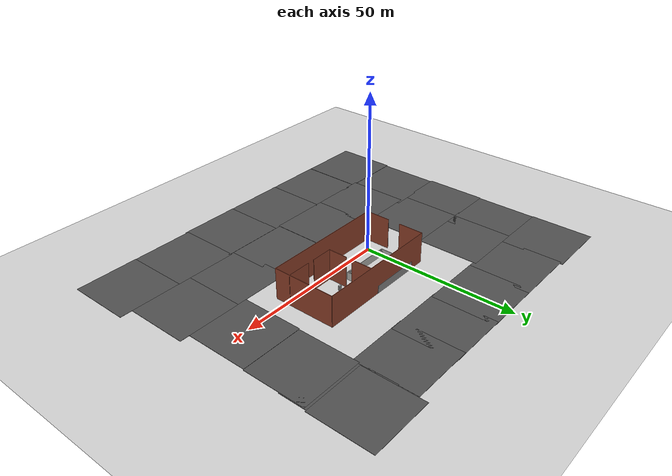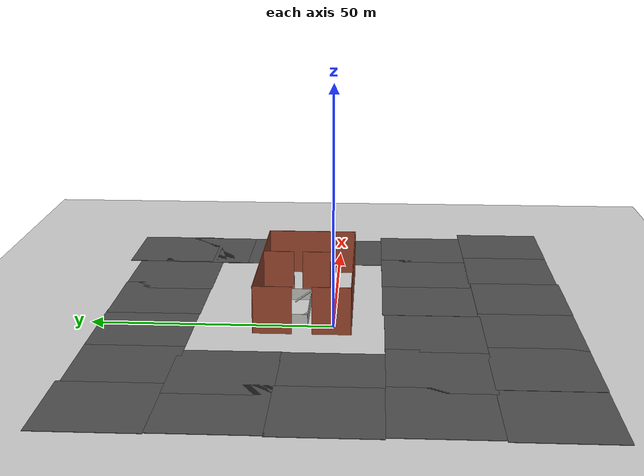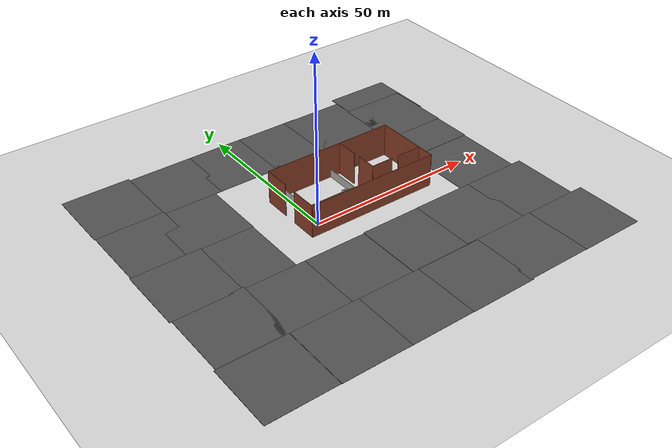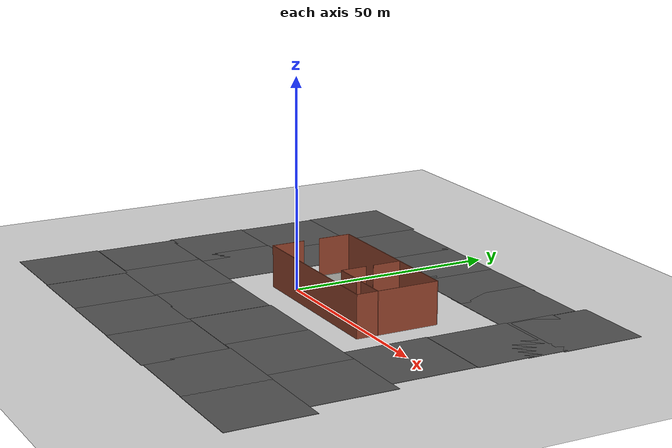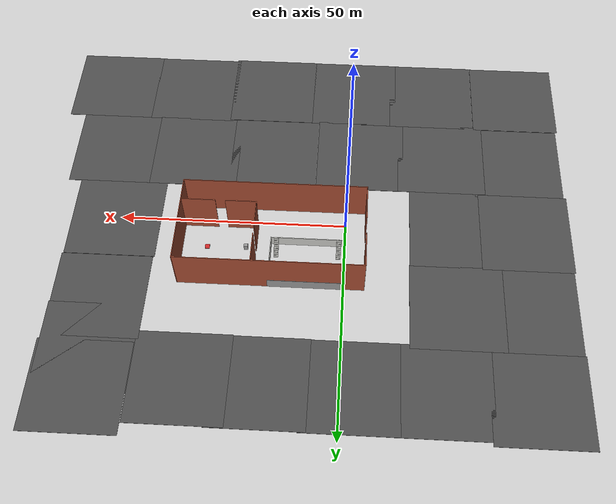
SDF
<sdf version="1.7">
 <world name="default">
  <light name="sun" type="directional">
   <pose>0 0 10 0 -0 0</pose>
   <diffuse>0.8 0.8 0.8 1</diffuse>
   <specular>0.2 0.2 0.2 1</specular>
   <attenuation>
    <range>1000</range>
    <constant>0.9</constant>
    <linear>0.01</linear>
    <quadratic>0.001</quadratic>
   </attenuation>
   <direction>-0.5 0.1 -0.9</direction>
   <spot><inner_angle>0</inner_angle><outer_angle>0</outer_angle><falloff>0</falloff></spot>
  </light>
  <model name="ground_plane">
   <static>1</static>
   <link name="link">
    <collision name="collision">
     <geometry><plane><normal>0 0 1</normal><size>100 100</size></plane></geometry>
     <surface><friction><ode><mu>100</mu><mu2>50</mu2></ode></friction></surface>
    </collision>
    <visual name="visual">
     <cast_shadows>0</cast_shadows>
     <geometry><plane><normal>0 0 1</normal><size>100 100</size></plane></geometry>
     <material>
      <script><uri>file://media/materials/scripts/gazebo.material</uri><name>Gazebo/Grey</name></script>
     </material>
    </visual>
   </link>
  </model>
  <gravity>0 0 -9.8</gravity>
  <magnetic_field>6e-06 2.3e-05 -4.2e-05</magnetic_field>
  <atmosphere type="adiabatic"/>
  <physics type="ode">
   <max_step_size>0.001</max_step_size>
   <real_time_factor>1</real_time_factor>
   <real_time_update_rate>1000</real_time_update_rate>
  </physics>
  <scene><ambient>0.4 0.4 0.4 1</ambient><background>0.7 0.7 0.7 1</background><shadows>1</shadows></scene>
  <spherical_coordinates>
   <surface_model>EARTH_WGS84</surface_model>
   <latitude_deg>0</latitude_deg>
   <longitude_deg>0</longitude_deg>
   <elevation>0</elevation>
   <heading_deg>0</heading_deg>
  </spherical_coordinates>
  <model name="asphalt_plane">
   <static>1</static>
   <link name="link">
    <collision name="collision"><geometry><box><size>20 20 0.1</size></box></geometry></collision>
    <visual name="visual">
     <cast_shadows>0</cast_shadows>
     <geometry><box><size>20 20 0.1</size></box></geometry>
     <material>
      <script>
       <uri>model://asphalt_plane/materials/scripts</uri>
       <uri>model://asphalt_plane/materials/textures</uri>
       <name>vrc/asphalt</name>
      </script>
     </material>
    </visual>
   </link>
   <pose>-39.8241 -39.947 0 0 -0 0</pose>
  </model>
  <model name="asphalt_plane_0">
   <static>1</static>
   <link name="link">
    <collision name="collision"><geometry><box><size>20 20 0.1</size></box></geometry></collision>
    <visual name="visual">
     <cast_shadows>0</cast_shadows>
     <geometry><box><size>20 20 0.1</size></box></geometry>
     <material>
      <script>
       <uri>model://asphalt_plane/materials/scripts</uri>
       <uri>model://asphalt_plane/materials/textures</uri>
       <name>vrc/asphalt</name>
      </script>
     </material>
    </visual>
   </link>
   <pose>-19.7251 -40.0496 0 0 -0 0</pose>
  </model>
  <model name="asphalt_plane_0_clone">
   <static>1</static>
   <link name="link">
    <collision name="collision"><geometry><box><size>20 20 0.1</size></box></geometry></collision>
    <visual name="visual">
     <cast_shadows>0</cast_shadows>
     <geometry><box><size>20 20 0.1</size></box></geometry>
     <material>
      <script>
       <uri>model://asphalt_plane/materials/scripts</uri>
       <uri>model://asphalt_plane/materials/textures</uri>
       <name>vrc/asphalt</name>
      </script>
     </material>
    </visual>
   </link>
   <pose>-1.04317 -40.092 0 0 -0 0</pose>
  </model>
  <model name="asphalt_plane_0_clone_0">
   <static>1</static>
   <link name="link">
    <collision name="collision"><geometry><box><size>20 20 0.1</size></box></geometry></collision>
    <visual name="visual">
     <cast_shadows>0</cast_shadows>
     <geometry><box><size>20 20 0.1</size></box></geometry>
     <material>
      <script>
       <uri>model://asphalt_plane/materials/scripts</uri>
       <uri>model://asphalt_plane/materials/textures</uri>
       <name>vrc/asphalt</name>
      </script>
     </material>
    </visual>
   </link>
   <pose>18.8278 -40.1651 0 0 -0 0</pose>
  </model>
  <model name="asphalt_plane_0_clone_1">
   <static>1</static>
   <link name="link">
    <collision name="collision"><geometry><box><size>20 20 0.1</size></box></geometry></collision>
    <visual name="visual">
     <cast_shadows>0</cast_shadows>
     <geometry><box><size>20 20 0.1</size></box></geometry>
     <material>
      <script>
       <uri>model://asphalt_plane/materials/scripts</uri>
       <uri>model://asphalt_plane/materials/textures</uri>
       <name>vrc/asphalt</name>
      </script>
     </material>
    </visual>
   </link>
   <pose>38.1259 -39.7973 0 0 -0 0</pose>
  </model>
  <model name="asphalt_plane_0_clone_2">
   <static>1</static>
   <link name="link">
    <collision name="collision"><geometry><box><size>20 20 0.1</size></box></geometry></collision>
    <visual name="visual">
     <cast_shadows>0</cast_shadows>
     <geometry><box><size>20 20 0.1</size></box></geometry>
     <material>
      <script>
       <uri>model://asphalt_plane/materials/scripts</uri>
       <uri>model://asphalt_plane/materials/textures</uri>
       <name>vrc/asphalt</name>
      </script>
     </material>
    </visual>
   </link>
   <pose>57.929 -39.8816 0 0 -0 0</pose>
  </model>
  <model name="asphalt_plane_0_clone_0_clone">
   <static>1</static>
   <link name="link">
    <collision name="collision"><geometry><box><size>20 20 0.1</size></box></geometry></collision>
    <visual name="visual">
     <cast_shadows>0</cast_shadows>
     <geometry><box><size>20 20 0.1</size></box></geometry>
     <material>
      <script>
       <uri>model://asphalt_plane/materials/scripts</uri>
       <uri>model://asphalt_plane/materials/textures</uri>
       <name>vrc/asphalt</name>
      </script>
     </material>
    </visual>
   </link>
   <pose>-39.3448 -19.834 0 0 -0 0</pose>
  </model>
  <model name="asphalt_plane_0_clone_0_clone_0">
   <static>1</static>
   <link name="link">
    <collision name="collision"><geometry><box><size>20 20 0.1</size></box></geometry></collision>
    <visual name="visual">
     <cast_shadows>0</cast_shadows>
     <geometry><box><size>20 20 0.1</size></box></geometry>
     <material>
      <script>
       <uri>model://asphalt_plane/materials/scripts</uri>
       <uri>model://asphalt_plane/materials/textures</uri>
       <name>vrc/asphalt</name>
      </script>
     </material>
    </visual>
   </link>
   <pose>-21.6374 -20.4901 0 0 -0 0</pose>
  </model>
  <model name="asphalt_plane_0_clone_0_clone_0_clone">
   <static>1</static>
   <link name="link">
    <collision name="collision"><geometry><box><size>20 20 0.1</size></box></geometry></collision>
    <visual name="visual">
     <cast_shadows>0</cast_shadows>
     <geometry><box><size>20 20 0.1</size></box></geometry>
     <material>
      <script>
       <uri>model://asphalt_plane/materials/scripts</uri>
       <uri>model://asphalt_plane/materials/textures</uri>
       <name>vrc/asphalt</name>
      </script>
     </material>
    </visual>
   </link>
   <pose>-2.86233 -20.4676 0 0 -0 0</pose>
  </model>
  <model name="asphalt_plane_0_clone_0_clone_0_clone_0">
   <static>1</static>
   <link name="link">
    <collision name="collision"><geometry><box><size>20 20 0.1</size></box></geometry></collision>
    <visual name="visual">
     <cast_shadows>0</cast_shadows>
     <geometry><box><size>20 20 0.1</size></box></geometry>
     <material>
      <script>
       <uri>model://asphalt_plane/materials/scripts</uri>
       <uri>model://asphalt_plane/materials/textures</uri>
       <name>vrc/asphalt</name>
      </script>
     </material>
    </visual>
   </link>
   <pose>17.2093 -20.1016 0 0 -0 0</pose>
  </model>
  <model name="asphalt_plane_0_clone_0_clone_0_clone_1">
   <static>1</static>
   <link name="link">
    <collision name="collision"><geometry><box><size>20 20 0.1</size></box></geometry></collision>
    <visual name="visual">
     <cast_shadows>0</cast_shadows>
     <geometry><box><size>20 20 0.1</size></box></geometry>
     <material>
      <script>
       <uri>model://asphalt_plane/materials/scripts</uri>
       <uri>model://asphalt_plane/materials/textures</uri>
       <name>vrc/asphalt</name>
      </script>
     </material>
    </visual>
   </link>
   <pose>35.52 -20.0038 0 0 -0 0</pose>
  </model>
  <model name="asphalt_plane_0_clone_0_clone_0_clone_2">
   <static>1</static>
   <link name="link">
    <collision name="collision"><geometry><box><size>20 20 0.1</size></box></geometry></collision>
    <visual name="visual">
     <cast_shadows>0</cast_shadows>
     <geometry><box><size>20 20 0.1</size></box></geometry>
     <material>
      <script>
       <uri>model://asphalt_plane/materials/scripts</uri>
       <uri>model://asphalt_plane/materials/textures</uri>
       <name>vrc/asphalt</name>
      </script>
     </material>
    </visual>
   </link>
   <pose>-39.8943 -0.386975 0 0 -0 0</pose>
  </model>
  <model name="asphalt_plane_0_clone_0_clone_0_clone_3">
   <static>1</static>
   <link name="link">
    <collision name="collision"><geometry><box><size>20 20 0.1</size></box></geometry></collision>
    <visual name="visual">
     <cast_shadows>0</cast_shadows>
     <geometry><box><size>20 20 0.1</size></box></geometry>
     <material>
      <script>
       <uri>model://asphalt_plane/materials/scripts</uri>
       <uri>model://asphalt_plane/materials/textures</uri>
       <name>vrc/asphalt</name>
      </script>
     </material>
    </visual>
   </link>
   <pose>-24.2725 -0.516395 0 0 -0 0</pose>
  </model>
  <model name="asphalt_plane_0_clone_0_clone_0_clone_7">
   <static>1</static>
   <link name="link">
    <collision name="collision"><geometry><box><size>20 20 0.1</size></box></geometry></collision>
    <visual name="visual">
     <cast_shadows>0</cast_shadows>
     <geometry><box><size>20 20 0.1</size></box></geometry>
     <material>
      <script>
       <uri>model://asphalt_plane/materials/scripts</uri>
       <uri>model://asphalt_plane/materials/textures</uri>
       <name>vrc/asphalt</name>
      </script>
     </material>
    </visual>
   </link>
   <pose>51.209 -0.020761 0 0 -0 0</pose>
  </model>
  <model name="asphalt_plane_0_clone_0_clone_0_clone_8">
   <static>1</static>
   <link name="link">
    <collision name="collision"><geometry><box><size>20 20 0.1</size></box></geometry></collision>
    <visual name="visual">
     <cast_shadows>0</cast_shadows>
     <geometry><box><size>20 20 0.1</size></box></geometry>
     <material>
      <script>
       <uri>model://asphalt_plane/materials/scripts</uri>
       <uri>model://asphalt_plane/materials/textures</uri>
       <name>vrc/asphalt</name>
      </script>
     </material>
    </visual>
   </link>
   <pose>54.1683 -19.9427 0 0 -0 0</pose>
  </model>
  <model name="asphalt_plane_0_clone_0_clone_0_clone_9">
   <static>1</static>
   <link name="link">
    <collision name="collision"><geometry><box><size>20 20 0.1</size></box></geometry></collision>
    <visual name="visual">
     <cast_shadows>0</cast_shadows>
     <geometry><box><size>20 20 0.1</size></box></geometry>
     <material>
      <script>
       <uri>model://asphalt_plane/materials/scripts</uri>
       <uri>model://asphalt_plane/materials/textures</uri>
       <name>vrc/asphalt</name>
      </script>
     </material>
    </visual>
   </link>
   <pose>52.1501 40.8071 0 0 -0 0</pose>
  </model>
  <model name="asphalt_plane_0_clone_0_clone_0_clone_10">
   <static>1</static>
   <link name="link">
    <collision name="collision"><geometry><box><size>20 20 0.1</size></box></geometry></collision>
    <visual name="visual">
     <cast_shadows>0</cast_shadows>
     <geometry><box><size>20 20 0.1</size></box></geometry>
     <material>
      <script>
       <uri>model://asphalt_plane/materials/scripts</uri>
       <uri>model://asphalt_plane/materials/textures</uri>
       <name>vrc/asphalt</name>
      </script>
     </material>
    </visual>
   </link>
   <pose>51.4991 20.0467 0 0 -0 0</pose>
  </model>
  <model name="asphalt_plane_0_clone_0_clone_0_clone_11">
   <static>1</static>
   <link name="link">
    <collision name="collision"><geometry><box><size>20 20 0.1</size></box></geometry></collision>
    <visual name="visual">
     <cast_shadows>0</cast_shadows>
     <geometry><box><size>20 20 0.1</size></box></geometry>
     <material>
      <script>
       <uri>model://asphalt_plane/materials/scripts</uri>
       <uri>model://asphalt_plane/materials/textures</uri>
       <name>vrc/asphalt</name>
      </script>
     </material>
    </visual>
   </link>
   <pose>51.7309 32.1414 0 0 -0 0</pose>
  </model>
  <model name="asphalt_plane_0_clone_0_clone_0_clone_13">
   <static>1</static>
   <link name="link">
    <collision name="collision"><geometry><box><size>20 20 0.1</size></box></geometry></collision>
    <visual name="visual">
     <cast_shadows>0</cast_shadows>
     <geometry><box><size>20 20 0.1</size></box></geometry>
     <material>
      <script>
       <uri>model://asphalt_plane/materials/scripts</uri>
       <uri>model://asphalt_plane/materials/textures</uri>
       <name>vrc/asphalt</name>
      </script>
     </material>
    </visual>
   </link>
   <pose>31.9998 38.1355 0 0 -0 0</pose>
  </model>
  <model name="asphalt_plane_0_clone_0_clone_0_clone_14">
   <static>1</static>
   <link name="link">
    <collision name="collision"><geometry><box><size>20 20 0.1</size></box></geometry></collision>
    <visual name="visual">
     <cast_shadows>0</cast_shadows>
     <geometry><box><size>20 20 0.1</size></box></geometry>
     <material>
      <script>
       <uri>model://asphalt_plane/materials/scripts</uri>
       <uri>model://asphalt_plane/materials/textures</uri>
       <name>vrc/asphalt</name>
      </script>
     </material>
    </visual>
   </link>
   <pose>-39.5883 19.3306 0 0 -0 0</pose>
  </model>
  <model name="asphalt_plane_0_clone_0_clone_0_clone_15">
   <static>1</static>
   <link name="link">
    <collision name="collision"><geometry><box><size>20 20 0.1</size></box></geometry></collision>
    <visual name="visual">
     <cast_shadows>0</cast_shadows>
     <geometry><box><size>20 20 0.1</size></box></geometry>
     <material>
      <script>
       <uri>model://asphalt_plane/materials/scripts</uri>
       <uri>model://asphalt_plane/materials/textures</uri>
       <name>vrc/asphalt</name>
      </script>
     </material>
    </visual>
   </link>
   <pose>-24.0924 19.3286 0 0 -0 0</pose>
  </model>
  <model name="asphalt_plane_0_clone_0_clone_0_clone_18">
   <static>1</static>
   <link name="link">
    <collision name="collision"><geometry><box><size>20 20 0.1</size></box></geometry></collision>
    <visual name="visual">
     <cast_shadows>0</cast_shadows>
     <geometry><box><size>20 20 0.1</size></box></geometry>
     <material>
      <script>
       <uri>model://asphalt_plane/materials/scripts</uri>
       <uri>model://asphalt_plane/materials/textures</uri>
       <name>vrc/asphalt</name>
      </script>
     </material>
    </visual>
   </link>
   <pose>-39.8337 39.2617 0 0 -0 0</pose>
  </model>
  <model name="asphalt_plane_0_clone_0_clone_0_clone_19">
   <static>1</static>
   <link name="link">
    <collision name="collision"><geometry><box><size>20 20 0.1</size></box></geometry></collision>
    <visual name="visual">
     <cast_shadows>0</cast_shadows>
     <geometry><box><size>20 20 0.1</size></box></geometry>
     <material>
      <script>
       <uri>model://asphalt_plane/materials/scripts</uri>
       <uri>model://asphalt_plane/materials/textures</uri>
       <name>vrc/asphalt</name>
      </script>
     </material>
    </visual>
   </link>
   <pose>-20.6763 38.422 0 0 -0 0</pose>
  </model>
  <model name="asphalt_plane_0_clone_0_clone_0_clone_20">
   <static>1</static>
   <link name="link">
    <collision name="collision"><geometry><box><size>20 20 0.1</size></box></geometry></collision>
    <visual name="visual">
     <cast_shadows>0</cast_shadows>
     <geometry><box><size>20 20 0.1</size></box></geometry>
     <material>
      <script>
       <uri>model://asphalt_plane/materials/scripts</uri>
       <uri>model://asphalt_plane/materials/textures</uri>
       <name>vrc/asphalt</name>
      </script>
     </material>
    </visual>
   </link>
   <pose>-2.21286 38.4035 0 0 -0 0</pose>
  </model>
  <model name="asphalt_plane_0_clone_0_clone_0_clone_21">
   <static>1</static>
   <link name="link">
    <collision name="collision"><geometry><box><size>20 20 0.1</size></box></geometry></collision>
    <visual name="visual">
     <cast_shadows>0</cast_shadows>
     <geometry><box><size>20 20 0.1</size></box></geometry>
     <material>
      <script>
       <uri>model://asphalt_plane/materials/scripts</uri>
       <uri>model://asphalt_plane/materials/textures</uri>
       <name>vrc/asphalt</name>
      </script>
     </material>
    </visual>
   </link>
   <pose>16.0484 38.2798 0 0 -0 0</pose>
  </model>
  <model name="nuk_plant">
   <pose>15.4845 6.18745 0 0 -0 0</pose>
   <link name="Stairs_0">
    <visual name="Stairs_0_Visual_0">
     <pose>-14.1825 2.41899 0.083333 0 -0 0</pose>
     <geometry><box><size>1 0.233333 0.166667</size></box></geometry>
     <material>
      <script><uri>file://media/materials/scripts/gazebo.material</uri><name>Gazebo/CeilingTiled</name></script>
      <ambient>0.921569 0.807843 0.615686 1</ambient>
     </material>
     <meta><layer>0</layer></meta>
    </visual>
    <collision name="Stairs_0_Collision_0">
     <geometry><box><size>1 0.233333 0.166667</size></box></geometry>
     <pose>-14.1825 2.41899 0.083333 0 -0 0</pose>
    </collision>
    <visual name="Stairs_0_Visual_1">
     <pose>-14.1825 2.18565 0.25 0 -0 0</pose>
     <geometry><box><size>1 0.233333 0.166667</size></box></geometry>
     <material>
      <script><uri>file://media/materials/scripts/gazebo.material</uri><name>Gazebo/CeilingTiled</name></script>
      <ambient>0.921569 0.807843 0.615686 1</ambient>
     </material>
     <meta><layer>0</layer></meta>
    </visual>
    <collision name="Stairs_0_Collision_1">
     <geometry><box><size>1 0.233333 0.166667</size></box></geometry>
     <pose>-14.1825 2.18565 0.25 0 -0 0</pose>
    </collision>
    <visual name="Stairs_0_Visual_2">
     <pose>-14.1825 1.95232 0.416667 0 -0 0</pose>
     <geometry><box><size>1 0.233333 0.166667</size></box></geometry>
     <material>
      <script><uri>file://media/materials/scripts/gazebo.material</uri><name>Gazebo/CeilingTiled</name></script>
      <ambient>0.921569 0.807843 0.615686 1</ambient>
     </material>
     <meta><layer>0</layer></meta>
    </visual>
    <collision name="Stairs_0_Collision_2">
     <geometry><box><size>1 0.233333 0.166667</size></box></geometry>
     <pose>-14.1825 1.95232 0.416667 0 -0 0</pose>
    </collision>
    <visual name="Stairs_0_Visual_3">
     <pose>-14.1825 1.71899 0.583333 0 -0 0</pose>
     <geometry><box><size>1 0.233333 0.166667</size></box></geometry>
     <material>
      <script><uri>file://media/materials/scripts/gazebo.material</uri><name>Gazebo/CeilingTiled</name></script>
      <ambient>0.921569 0.807843 0.615686 1</ambient>
     </material>
     <meta><layer>0</layer></meta>
    </visual>
    <collision name="Stairs_0_Collision_3">
     <geometry><box><size>1 0.233333 0.166667</size></box></geometry>
     <pose>-14.1825 1.71899 0.583333 0 -0 0</pose>
    </collision>
    <visual name="Stairs_0_Visual_4">
     <pose>-14.1825 1.48565 0.75 0 -0 0</pose>
     <geometry><box><size>1 0.233333 0.166667</size></box></geometry>
     <material>
      <script><uri>file://media/materials/scripts/gazebo.material</uri><name>Gazebo/CeilingTiled</name></script>
      <ambient>0.921569 0.807843 0.615686 1</ambient>
     </material>
     <meta><layer>0</layer></meta>
    </visual>
    <collision name="Stairs_0_Collision_4">
     <geometry><box><size>1 0.233333 0.166667</size></box></geometry>
     <pose>-14.1825 1.48565 0.75 0 -0 0</pose>
    </collision>
    <visual name="Stairs_0_Visual_5">
     <pose>-14.1825 1.25232 0.916667 0 -0 0</pose>
     <geometry><box><size>1 0.233333 0.166667</size></box></geometry>
     <material>
      <script><uri>file://media/materials/scripts/gazebo.material</uri><name>Gazebo/CeilingTiled</name></script>
      <ambient>0.921569 0.807843 0.615686 1</ambient>
     </material>
     <meta><layer>0</layer></meta>
    </visual>
    <collision name="Stairs_0_Collision_5">
     <geometry><box><size>1 0.233333 0.166667</size></box></geometry>
     <pose>-14.1825 1.25232 0.916667 0 -0 0</pose>
    </collision>
    <visual name="Stairs_0_Visual_6">
     <pose>-14.1825 1.01899 1.08333 0 -0 0</pose>
     <geometry><box><size>1 0.233333 0.166667</size></box></geometry>
     <material>
      <script><uri>file://media/materials/scripts/gazebo.material</uri><name>Gazebo/CeilingTiled</name></script>
      <ambient>0.921569 0.807843 0.615686 1</ambient>
     </material>
     <meta><layer>0</layer></meta>
    </visual>
    <collision name="Stairs_0_Collision_6">
     <geometry><box><size>1 0.233333 0.166667</size></box></geometry>
     <pose>-14.1825 1.01899 1.08333 0 -0 0</pose>
    </collision>
    <visual name="Stairs_0_Visual_7">
     <pose>-14.1825 0.785654 1.25 0 -0 0</pose>
     <geometry><box><size>1 0.233333 0.166667</size></box></geometry>
     <material>
      <script><uri>file://media/materials/scripts/gazebo.material</uri><name>Gazebo/CeilingTiled</name></script>
      <ambient>0.921569 0.807843 0.615686 1</ambient>
     </material>
     <meta><layer>0</layer></meta>
    </visual>
    <collision name="Stairs_0_Collision_7">
     <geometry><box><size>1 0.233333 0.166667</size></box></geometry>
     <pose>-14.1825 0.785654 1.25 0 -0 0</pose>
    </collision>
    <visual name="Stairs_0_Visual_8">
     <pose>-14.1825 0.552321 1.41667 0 -0 0</pose>
     <geometry><box><size>1 0.233333 0.166667</size></box></geometry>
     <material>
      <script><uri>file://media/materials/scripts/gazebo.material</uri><name>Gazebo/CeilingTiled</name></script>
      <ambient>0.921569 0.807843 0.615686 1</ambient>
     </material>
     <meta><layer>0</layer></meta>
    </visual>
    <collision name="Stairs_0_Collision_8">
     <geometry><box><size>1 0.233333 0.166667</size></box></geometry>
     <pose>-14.1825 0.552321 1.41667 0 -0 0</pose>
    </collision>
    <visual name="Stairs_0_Visual_9">
     <pose>-14.1825 0.318988 1.58333 0 -0 0</pose>
     <geometry><box><size>1 0.233333 0.166667</size></box></geometry>
     <material>
      <script><uri>file://media/materials/scripts/gazebo.material</uri><name>Gazebo/CeilingTiled</name></script>
      <ambient>0.921569 0.807843 0.615686 1</ambient>
     </material>
     <meta><layer>0</layer></meta>
    </visual>
    <collision name="Stairs_0_Collision_9">
     <geometry><box><size>1 0.233333 0.166667</size></box></geometry>
     <pose>-14.1825 0.318988 1.58333 0 -0 0</pose>
    </collision>
    <visual name="Stairs_0_Visual_10">
     <pose>-14.1825 0.085654 1.75 0 -0 0</pose>
     <geometry><box><size>1 0.233333 0.166667</size></box></geometry>
     <material>
      <script><uri>file://media/materials/scripts/gazebo.material</uri><name>Gazebo/CeilingTiled</name></script>
      <ambient>0.921569 0.807843 0.615686 1</ambient>
     </material>
     <meta><layer>0</layer></meta>
    </visual>
    <collision name="Stairs_0_Collision_10">
     <geometry><box><size>1 0.233333 0.166667</size></box></geometry>
     <pose>-14.1825 0.085654 1.75 0 -0 0</pose>
    </collision>
    <visual name="Stairs_0_Visual_11">
     <pose>-14.1825 -0.147679 1.91667 0 -0 0</pose>
     <geometry><box><size>1 0.233333 0.166667</size></box></geometry>
     <material>
      <script><uri>file://media/materials/scripts/gazebo.material</uri><name>Gazebo/CeilingTiled</name></script>
      <ambient>0.921569 0.807843 0.615686 1</ambient>
     </material>
     <meta><layer>0</layer></meta>
    </visual>
    <collision name="Stairs_0_Collision_11">
     <geometry><box><size>1 0.233333 0.166667</size></box></geometry>
     <pose>-14.1825 -0.147679 1.91667 0 -0 0</pose>
    </collision>
    <visual name="Stairs_0_Visual_12">
     <pose>-14.1825 -0.381012 2.08333 0 -0 0</pose>
     <geometry><box><size>1 0.233333 0.166667</size></box></geometry>
     <material>
      <script><uri>file://media/materials/scripts/gazebo.material</uri><name>Gazebo/CeilingTiled</name></script>
      <ambient>0.921569 0.807843 0.615686 1</ambient>
     </material>
     <meta><layer>0</layer></meta>
    </visual>
    <collision name="Stairs_0_Collision_12">
     <geometry><box><size>1 0.233333 0.166667</size></box></geometry>
     <pose>-14.1825 -0.381012 2.08333 0 -0 0</pose>
    </collision>
    <visual name="Stairs_0_Visual_13">
     <pose>-14.1825 -0.614346 2.25 0 -0 0</pose>
     <geometry><box><size>1 0.233333 0.166667</size></box></geometry>
     <material>
      <script><uri>file://media/materials/scripts/gazebo.material</uri><name>Gazebo/CeilingTiled</name></script>
      <ambient>0.921569 0.807843 0.615686 1</ambient>
     </material>
     <meta><layer>0</layer></meta>
    </visual>
    <collision name="Stairs_0_Collision_13">
     <geometry><box><size>1 0.233333 0.166667</size></box></geometry>
     <pose>-14.1825 -0.614346 2.25 0 -0 0</pose>
    </collision>
    <visual name="Stairs_0_Visual_14">
     <pose>-14.1825 -0.847679 2.41667 0 -0 0</pose>
     <geometry><box><size>1 0.233333 0.166667</size></box></geometry>
     <material>
      <script><uri>file://media/materials/scripts/gazebo.material</uri><name>Gazebo/CeilingTiled</name></script>
      <ambient>0.921569 0.807843 0.615686 1</ambient>
     </material>
     <meta><layer>0</layer></meta>
    </visual>
    <collision name="Stairs_0_Collision_14">
     <geometry><box><size>1 0.233333 0.166667</size></box></geometry>
     <pose>-14.1825 -0.847679 2.41667 0 -0 0</pose>
    </collision>
   </link>
   <link name="Stairs_1">
    <visual name="Stairs_1_Visual_0">
     <pose>-0.662074 2.46263 0.083333 0 -0 0</pose>
     <geometry><box><size>1 0.233333 0.166667</size></box></geometry>
     <material>
      <script><uri>file://media/materials/scripts/gazebo.material</uri><name>Gazebo/CeilingTiled</name></script>
      <ambient>0.921569 0.807843 0.615686 1</ambient>
     </material>
     <meta><layer>0</layer></meta>
    </visual>
    <collision name="Stairs_1_Collision_0">
     <geometry><box><size>1 0.233333 0.166667</size></box></geometry>
     <pose>-0.662074 2.46263 0.083333 0 -0 0</pose>
    </collision>
    <visual name="Stairs_1_Visual_1">
     <pose>-0.662074 2.2293 0.25 0 -0 0</pose>
     <geometry><box><size>1 0.233333 0.166667</size></box></geometry>
     <material>
      <script><uri>file://media/materials/scripts/gazebo.material</uri><name>Gazebo/CeilingTiled</name></script>
      <ambient>0.921569 0.807843 0.615686 1</ambient>
     </material>
     <meta><layer>0</layer></meta>
    </visual>
    <collision name="Stairs_1_Collision_1">
     <geometry><box><size>1 0.233333 0.166667</size></box></geometry>
     <pose>-0.662074 2.2293 0.25 0 -0 0</pose>
    </collision>
    <visual name="Stairs_1_Visual_2">
     <pose>-0.662074 1.99597 0.416667 0 -0 0</pose>
     <geometry><box><size>1 0.233333 0.166667</size></box></geometry>
     <material>
      <script><uri>file://media/materials/scripts/gazebo.material</uri><name>Gazebo/CeilingTiled</name></script>
      <ambient>0.921569 0.807843 0.615686 1</ambient>
     </material>
     <meta><layer>0</layer></meta>
    </visual>
    <collision name="Stairs_1_Collision_2">
     <geometry><box><size>1 0.233333 0.166667</size></box></geometry>
     <pose>-0.662074 1.99597 0.416667 0 -0 0</pose>
    </collision>
    <visual name="Stairs_1_Visual_3">
     <pose>-0.662074 1.76263 0.583333 0 -0 0</pose>
     <geometry><box><size>1 0.233333 0.166667</size></box></geometry>
     <material>
      <script><uri>file://media/materials/scripts/gazebo.material</uri><name>Gazebo/CeilingTiled</name></script>
      <ambient>0.921569 0.807843 0.615686 1</ambient>
     </material>
     <meta><layer>0</layer></meta>
    </visual>
    <collision name="Stairs_1_Collision_3">
     <geometry><box><size>1 0.233333 0.166667</size></box></geometry>
     <pose>-0.662074 1.76263 0.583333 0 -0 0</pose>
    </collision>
    <visual name="Stairs_1_Visual_4">
     <pose>-0.662074 1.5293 0.75 0 -0 0</pose>
     <geometry><box><size>1 0.233333 0.166667</size></box></geometry>
     <material>
      <script><uri>file://media/materials/scripts/gazebo.material</uri><name>Gazebo/CeilingTiled</name></script>
      <ambient>0.921569 0.807843 0.615686 1</ambient>
     </material>
     <meta><layer>0</layer></meta>
    </visual>
    <collision name="Stairs_1_Collision_4">
     <geometry><box><size>1 0.233333 0.166667</size></box></geometry>
     <pose>-0.662074 1.5293 0.75 0 -0 0</pose>
    </collision>
    <visual name="Stairs_1_Visual_5">
     <pose>-0.662074 1.29597 0.916667 0 -0 0</pose>
     <geometry><box><size>1 0.233333 0.166667</size></box></geometry>
     <material>
      <script><uri>file://media/materials/scripts/gazebo.material</uri><name>Gazebo/CeilingTiled</name></script>
      <ambient>0.921569 0.807843 0.615686 1</ambient>
     </material>
     <meta><layer>0</layer></meta>
    </visual>
    <collision name="Stairs_1_Collision_5">
     <geometry><box><size>1 0.233333 0.166667</size></box></geometry>
     <pose>-0.662074 1.29597 0.916667 0 -0 0</pose>
    </collision>
    <visual name="Stairs_1_Visual_6">
     <pose>-0.662074 1.06263 1.08333 0 -0 0</pose>
     <geometry><box><size>1 0.233333 0.166667</size></box></geometry>
     <material>
      <script><uri>file://media/materials/scripts/gazebo.material</uri><name>Gazebo/CeilingTiled</name></script>
      <ambient>0.921569 0.807843 0.615686 1</ambient>
     </material>
     <meta><layer>0</layer></meta>
    </visual>
    <collision name="Stairs_1_Collision_6">
     <geometry><box><size>1 0.233333 0.166667</size></box></geometry>
     <pose>-0.662074 1.06263 1.08333 0 -0 0</pose>
    </collision>
    <visual name="Stairs_1_Visual_7">
     <pose>-0.662074 0.829299 1.25 0 -0 0</pose>
     <geometry><box><size>1 0.233333 0.166667</size></box></geometry>
     <material>
      <script><uri>file://media/materials/scripts/gazebo.material</uri><name>Gazebo/CeilingTiled</name></script>
      <ambient>0.921569 0.807843 0.615686 1</ambient>
     </material>
     <meta><layer>0</layer></meta>
    </visual>
    <collision name="Stairs_1_Collision_7">
     <geometry><box><size>1 0.233333 0.166667</size></box></geometry>
     <pose>-0.662074 0.829299 1.25 0 -0 0</pose>
    </collision>
    <visual name="Stairs_1_Visual_8">
     <pose>-0.662074 0.595965 1.41667 0 -0 0</pose>
     <geometry><box><size>1 0.233333 0.166667</size></box></geometry>
     <material>
      <script><uri>file://media/materials/scripts/gazebo.material</uri><name>Gazebo/CeilingTiled</name></script>
      <ambient>0.921569 0.807843 0.615686 1</ambient>
     </material>
     <meta><layer>0</layer></meta>
    </visual>
    <collision name="Stairs_1_Collision_8">
     <geometry><box><size>1 0.233333 0.166667</size></box></geometry>
     <pose>-0.662074 0.595965 1.41667 0 -0 0</pose>
    </collision>
    <visual name="Stairs_1_Visual_9">
     <pose>-0.662074 0.362632 1.58333 0 -0 0</pose>
     <geometry><box><size>1 0.233333 0.166667</size></box></geometry>
     <material>
      <script><uri>file://media/materials/scripts/gazebo.material</uri><name>Gazebo/CeilingTiled</name></script>
      <ambient>0.921569 0.807843 0.615686 1</ambient>
     </material>
     <meta><layer>0</layer></meta>
    </visual>
    <collision name="Stairs_1_Collision_9">
     <geometry><box><size>1 0.233333 0.166667</size></box></geometry>
     <pose>-0.662074 0.362632 1.58333 0 -0 0</pose>
    </collision>
    <visual name="Stairs_1_Visual_10">
     <pose>-0.662074 0.129299 1.75 0 -0 0</pose>
     <geometry><box><size>1 0.233333 0.166667</size></box></geometry>
     <material>
      <script><uri>file://media/materials/scripts/gazebo.material</uri><name>Gazebo/CeilingTiled</name></script>
      <ambient>0.921569 0.807843 0.615686 1</ambient>
     </material>
     <meta><layer>0</layer></meta>
    </visual>
    <collision name="Stairs_1_Collision_10">
     <geometry><box><size>1 0.233333 0.166667</size></box></geometry>
     <pose>-0.662074 0.129299 1.75 0 -0 0</pose>
    </collision>
    <visual name="Stairs_1_Visual_11">
     <pose>-0.662074 -0.104035 1.91667 0 -0 0</pose>
     <geometry><box><size>1 0.233333 0.166667</size></box></geometry>
     <material>
      <script><uri>file://media/materials/scripts/gazebo.material</uri><name>Gazebo/CeilingTiled</name></script>
      <ambient>0.921569 0.807843 0.615686 1</ambient>
     </material>
     <meta><layer>0</layer></meta>
    </visual>
    <collision name="Stairs_1_Collision_11">
     <geometry><box><size>1 0.233333 0.166667</size></box></geometry>
     <pose>-0.662074 -0.104035 1.91667 0 -0 0</pose>
    </collision>
    <visual name="Stairs_1_Visual_12">
     <pose>-0.662074 -0.337368 2.08333 0 -0 0</pose>
     <geometry><box><size>1 0.233333 0.166667</size></box></geometry>
     <material>
      <script><uri>file://media/materials/scripts/gazebo.material</uri><name>Gazebo/CeilingTiled</name></script>
      <ambient>0.921569 0.807843 0.615686 1</ambient>
     </material>
     <meta><layer>0</layer></meta>
    </visual>
    <collision name="Stairs_1_Collision_12">
     <geometry><box><size>1 0.233333 0.166667</size></box></geometry>
     <pose>-0.662074 -0.337368 2.08333 0 -0 0</pose>
    </collision>
    <visual name="Stairs_1_Visual_13">
     <pose>-0.662074 -0.570701 2.25 0 -0 0</pose>
     <geometry><box><size>1 0.233333 0.166667</size></box></geometry>
     <material>
      <script><uri>file://media/materials/scripts/gazebo.material</uri><name>Gazebo/CeilingTiled</name></script>
      <ambient>0.921569 0.807843 0.615686 1</ambient>
     </material>
     <meta><layer>0</layer></meta>
    </visual>
    <collision name="Stairs_1_Collision_13">
     <geometry><box><size>1 0.233333 0.166667</size></box></geometry>
     <pose>-0.662074 -0.570701 2.25 0 -0 0</pose>
    </collision>
    <visual name="Stairs_1_Visual_14">
     <pose>-0.662074 -0.804034 2.41667 0 -0 0</pose>
     <geometry><box><size>1 0.233333 0.166667</size></box></geometry>
     <material>
      <script><uri>file://media/materials/scripts/gazebo.material</uri><name>Gazebo/CeilingTiled</name></script>
      <ambient>0.921569 0.807843 0.615686 1</ambient>
     </material>
     <meta><layer>0</layer></meta>
    </visual>
    <collision name="Stairs_1_Collision_14">
     <geometry><box><size>1 0.233333 0.166667</size></box></geometry>
     <pose>-0.662074 -0.804034 2.41667 0 -0 0</pose>
    </collision>
   </link>
   <link name="Wall_1">
    <collision name="Wall_1_Collision">
     <geometry><box><size>40 0.15 10</size></box></geometry>
     <pose>0 0 5 0 -0 0</pose>
    </collision>
    <visual name="Wall_1_Visual">
     <pose>0 0 5 0 -0 0</pose>
     <geometry><box><size>40 0.15 10</size></box></geometry>
     <material>
      <script><uri>file://media/materials/scripts/gazebo.material</uri><name>Gazebo/Bricks</name></script>
      <ambient>1 1 1 1</ambient>
     </material>
     <meta><layer>0</layer></meta>
    </visual>
    <pose>-0.000999 -9.94556 0 0 -0 0</pose>
   </link>
   <link name="Wall_11">
    <collision name="Wall_11_Collision">
     <geometry><box><size>40 0.15 10</size></box></geometry>
     <pose>0 0 5 0 -0 0</pose>
    </collision>
    <visual name="Wall_11_Visual">
     <pose>0 0 5 0 -0 0</pose>
     <geometry><box><size>40 0.15 10</size></box></geometry>
     <material>
      <script><uri>file://media/materials/scripts/gazebo.material</uri><name>Gazebo/Bricks</name></script>
      <ambient>1 1 1 1</ambient>
     </material>
     <meta><layer>0</layer></meta>
    </visual>
    <pose>-0.000999 9.90444 0 0 -0 0</pose>
   </link>
   <link name="Wall_13">
    <collision name="Wall_13_Collision">
     <geometry><box><size>8 0.15 10</size></box></geometry>
     <pose>0 0 5 0 -0 0</pose>
    </collision>
    <visual name="Wall_13_Visual">
     <pose>0 0 5 0 -0 0</pose>
     <geometry><box><size>8 0.15 10</size></box></geometry>
     <material>
      <script><uri>file://media/materials/scripts/gazebo.material</uri><name>Gazebo/Bricks</name></script>
      <ambient>1 1 1 1</ambient>
     </material>
     <meta><layer>0</layer></meta>
    </visual>
    <pose>-19.926 -6.02056 0 0 -0 1.5708</pose>
   </link>
   <link name="Wall_15">
    <collision name="Wall_15_Collision">
     <geometry><box><size>8 0.15 10</size></box></geometry>
     <pose>0 0 5 0 -0 0</pose>
    </collision>
    <visual name="Wall_15_Visual">
     <pose>0 0 5 0 -0 0</pose>
     <geometry><box><size>8 0.15 10</size></box></geometry>
     <material>
      <script><uri>file://media/materials/scripts/gazebo.material</uri><name>Gazebo/Bricks</name></script>
      <ambient>1 1 1 1</ambient>
     </material>
     <meta><layer>0</layer></meta>
    </visual>
    <pose>-19.926 5.97944 0 0 -0 -1.5708</pose>
   </link>
   <link name="Wall_18">
    <collision name="Wall_18_Collision">
     <geometry><box><size>6.75 0.15 10</size></box></geometry>
     <pose>0 0 5 0 -0 0</pose>
    </collision>
    <visual name="Wall_18_Visual">
     <pose>0 0 5 0 -0 0</pose>
     <geometry><box><size>6.75 0.15 10</size></box></geometry>
     <material>
      <script><uri>file://media/materials/scripts/gazebo.material</uri><name>Gazebo/Bricks</name></script>
      <ambient>1 1 1 1</ambient>
     </material>
     <meta><layer>0</layer></meta>
    </visual>
    <pose>7.015 -4.87106 0 0 -0 0.007727</pose>
   </link>
   <link name="Wall_20">
    <collision name="Wall_20_Collision">
     <geometry><box><size>7.5 0.15 10</size></box></geometry>
     <pose>0 0 5 0 -0 0</pose>
    </collision>
    <visual name="Wall_20_Visual">
     <pose>0 0 5 0 -0 0</pose>
     <geometry><box><size>7.5 0.15 10</size></box></geometry>
     <material>
      <script><uri>file://media/materials/scripts/gazebo.material</uri><name>Gazebo/Bricks</name></script>
      <ambient>1 1 1 1</ambient>
     </material>
     <meta><layer>0</layer></meta>
    </visual>
    <pose>16.251 -4.87056 0 0 -0 3.14159</pose>
   </link>
   <link name="Wall_22">
    <collision name="Wall_22_Collision">
     <geometry><box><size>6.25 0.15 10</size></box></geometry>
     <pose>0 0 5 0 -0 0</pose>
    </collision>
    <visual name="Wall_22_Visual">
     <pose>0 0 5 0 -0 0</pose>
     <geometry><box><size>6.25 0.15 10</size></box></geometry>
     <material>
      <script><uri>file://media/materials/scripts/gazebo.material</uri><name>Gazebo/Bricks</name></script>
      <ambient>1 1 1 1</ambient>
     </material>
     <meta><layer>0</layer></meta>
    </visual>
    <pose>3.715 -1.84656 0 0 -0 1.5708</pose>
   </link>
   <link name="Wall_27">
    <collision name="Wall_27_Collision">
     <geometry><box><size>6.75 0.15 10</size></box></geometry>
     <pose>0 0 5 0 -0 0</pose>
    </collision>
    <visual name="Wall_27_Visual">
     <pose>0 0 5 0 -0 0</pose>
     <geometry><box><size>6.75 0.15 10</size></box></geometry>
     <material>
      <script><uri>file://media/materials/scripts/gazebo.material</uri><name>Gazebo/Bricks</name></script>
      <ambient>1 1 1 1</ambient>
     </material>
     <meta><layer>0</layer></meta>
    </visual>
    <pose>3.715 6.50344 0 0 -0 -1.5708</pose>
   </link>
   <link name="Wall_29">
    <collision name="Wall_29_Collision">
     <geometry><box><size>0.16 0.15 2.5</size></box></geometry>
     <pose>0 0 1.25 0 -0 0</pose>
    </collision>
    <visual name="Wall_29_Visual">
     <pose>0 0 1.25 0 -0 0</pose>
     <geometry><box><size>0.16 0.15 2.5</size></box></geometry>
     <material>
      <script><uri>file://media/materials/scripts/gazebo.material</uri><name>Gazebo/Grey</name></script>
      <ambient>1 1 1 1</ambient>
     </material>
     <meta><layer>0</layer></meta>
    </visual>
    <pose>-15.2862 9.94556 0 0 -0 0</pose>
   </link>
   <link name="Wall_30">
    <collision name="Wall_30_Collision">
     <geometry><box><size>11 0.15 2.5</size></box></geometry>
     <pose>0 0 1.25 0 -0 0</pose>
    </collision>
    <visual name="Wall_30_Visual">
     <pose>0 0 1.25 0 -0 0</pose>
     <geometry><box><size>11 0.15 2.5</size></box></geometry>
     <material>
      <script><uri>file://media/materials/scripts/gazebo.material</uri><name>Gazebo/CeilingTiled</name></script>
      <ambient>1 1 1 1</ambient>
     </material>
     <meta><layer>0</layer></meta>
    </visual>
    <pose>-15.2812 4.52056 0 0 -0 -1.5708</pose>
   </link>
   <link name="Wall_31">
    <collision name="Wall_31_Collision">
     <geometry><box><size>16 0.15 2.5</size></box></geometry>
     <pose>0 0 1.25 0 -0 0</pose>
    </collision>
    <visual name="Wall_31_Visual">
     <pose>0 0 1.25 0 -0 0</pose>
     <geometry><box><size>16 0.15 2.5</size></box></geometry>
     <material>
      <script><uri>file://media/materials/scripts/gazebo.material</uri><name>Gazebo/CeilingTiled</name></script>
      <ambient>1 1 1 1</ambient>
     </material>
     <meta><layer>0</layer></meta>
    </visual>
    <pose>-7.35622 -0.904441 0 0 -0 0</pose>
   </link>
   <link name="Wall_32">
    <collision name="Wall_32_Collision">
     <geometry><box><size>11 0.15 2.5</size></box></geometry>
     <pose>0 0 1.25 0 -0 0</pose>
    </collision>
    <visual name="Wall_32_Visual">
     <pose>0 0 1.25 0 -0 0</pose>
     <geometry><box><size>11 0.15 2.5</size></box></geometry>
     <material>
      <script><uri>file://media/materials/scripts/gazebo.material</uri><name>Gazebo/CeilingTiled</name></script>
      <ambient>1 1 1 1</ambient>
     </material>
     <meta><layer>0</layer></meta>
    </visual>
    <pose>0.568781 4.52056 0 0 -0 1.5708</pose>
   </link>
   <link name="Wall_34">
    <collision name="Wall_34_Collision">
     <geometry><box><size>16 0.15 2.5</size></box></geometry>
     <pose>0 0 1.25 0 -0 0</pose>
    </collision>
    <visual name="Wall_34_Visual">
     <pose>0 0 1.25 0 -0 0</pose>
     <geometry><box><size>16 0.15 2.5</size></box></geometry>
     <material>
      <script><uri>file://media/materials/scripts/gazebo.material</uri><name>Gazebo/Grey</name></script>
      <ambient>1 1 1 1</ambient>
     </material>
     <meta><layer>0</layer></meta>
    </visual>
    <pose>-7.35622 9.94556 0 0 -0 0</pose>
   </link>
   <link name="Wall_9">
    <collision name="Wall_9_Collision">
     <geometry><box><size>20 0.15 10</size></box></geometry>
     <pose>0 0 5 0 -0 0</pose>
    </collision>
    <visual name="Wall_9_Visual">
     <pose>0 0 5 0 -0 0</pose>
     <geometry><box><size>20 0.15 10</size></box></geometry>
     <material>
      <script><uri>file://media/materials/scripts/gazebo.material</uri><name>Gazebo/Bricks</name></script>
      <ambient>1 1 1 1</ambient>
     </material>
     <meta><layer>0</layer></meta>
    </visual>
    <pose>19.924 -0.020558 0 0 -0 1.5708</pose>
   </link>
   <static>1</static>
  </model>
  <model name="table">
   <link name="link">
    <inertial>
     <mass>1</mass>
     <inertia>
      <ixx>0.166667</ixx>
      <ixy>0</ixy>
      <ixz>0</ixz>
      <iyy>0.166667</iyy>
      <iyz>0</iyz>
      <izz>0.166667</izz>
     </inertia>
    </inertial>
    <visual name="visual">
     <geometry><box><size>1 1 0.27</size></box></geometry>
     <material>
      <script><name>Gazebo/Red</name><uri>file://media/materials/scripts/gazebo.material</uri></script>
      <shader type="pixel"><normal_map>__default__</normal_map></shader>
      <ambient>0.3 0.3 0.3 1</ambient>
      <diffuse>0.7 0.7 0.7 1</diffuse>
      <specular>0.01 0.01 0.01 1</specular>
      <emissive>0 0 0 1</emissive>
     </material>
    </visual>
    <collision name="collision">
     <geometry><box><size>1 1 0.27</size></box></geometry>
     <surface>
      <friction>
       <ode><mu>1</mu><mu2>1</mu2><fdir1>0 0 0</fdir1><slip1>0</slip1><slip2>0</slip2></ode>
       <torsional>
        <coefficient>1</coefficient>
        <patch_radius>0</patch_radius>
        <surface_radius>0</surface_radius>
        <use_patch_radius>1</use_patch_radius>
        <ode><slip>0</slip></ode>
       </torsional>
      </friction>
      <bounce><restitution_coefficient>0</restitution_coefficient><threshold>1e+06</threshold></bounce>
      <contact>
       <collide_without_contact>0</collide_without_contact>
       <collide_without_contact_bitmask>1</collide_without_contact_bitmask>
       <collide_bitmask>1</collide_bitmask>
       <ode>
        <soft_cfm>0</soft_cfm>
        <soft_erp>0.2</soft_erp>
        <kp>1e+13</kp>
        <kd>1</kd>
        <max_vel>0.01</max_vel>
        <min_depth>0</min_depth>
       </ode>
       <bullet>
        <split_impulse>1</split_impulse>
        <split_impulse_penetration_threshold>-0.01</split_impulse_penetration_threshold>
        <soft_cfm>0</soft_cfm>
        <soft_erp>0.2</soft_erp>
        <kp>1e+13</kp>
        <kd>1</kd>
       </bullet>
      </contact>
     </surface>
    </collision>
   </link>
   <static>0</static>
   <pose>29.966 6.86867 0.134674 -8.1e-05 7.6e-05 -1e-06</pose>
  </model>
  <model name="Seagate_1TB_Backup_Plus_portable_drive_Blue">
   <link name="link_0">
    <inertial>
     <inertia><ixx>1</ixx><ixy>0</ixy><ixz>0</ixz><iyy>1</iyy><iyz>0</iyz><izz>1</izz></inertia>
     <mass>0.05</mass>
    </inertial>
    <visual name="visual">
     <geometry>
      <mesh><uri>model://Seagate_1TB_Backup_Plus_portable_drive_Blue/meshes/model.obj</uri></mesh>
     </geometry>
     <material><shader type="pixel"><normal_map>__default__</normal_map></shader></material>
    </visual>
    <collision name="collision_0">
     <geometry>
      <mesh>
       <uri>model://Seagate_1TB_Backup_Plus_portable_drive_Blue/meshes/model.obj</uri>
       <scale>1 1 1</scale>
      </mesh>
     </geometry>
     <surface>
      <friction>
       <ode><mu>1</mu><mu2>1</mu2><fdir1>0 0 0</fdir1><slip1>0</slip1><slip2>0</slip2></ode>
       <torsional>
        <coefficient>1</coefficient>
        <patch_radius>0</patch_radius>
        <surface_radius>0</surface_radius>
        <use_patch_radius>1</use_patch_radius>
        <ode><slip>0</slip></ode>
       </torsional>
      </friction>
      <bounce><restitution_coefficient>0</restitution_coefficient><threshold>1e+06</threshold></bounce>
      <contact>
       <collide_without_contact>0</collide_without_contact>
       <collide_without_contact_bitmask>1</collide_without_contact_bitmask>
       <collide_bitmask>1</collide_bitmask>
       <ode>
        <soft_cfm>0</soft_cfm>
        <soft_erp>0.2</soft_erp>
        <kp>1e+13</kp>
        <kd>1</kd>
        <max_vel>0.01</max_vel>
        <min_depth>0</min_depth>
       </ode>
       <bullet>
        <split_impulse>1</split_impulse>
        <split_impulse_penetration_threshold>-0.01</split_impulse_penetration_threshold>
        <soft_cfm>0</soft_cfm>
        <soft_erp>0.2</soft_erp>
        <kp>1e+13</kp>
        <kd>1</kd>
       </bullet>
      </contact>
     </surface>
    </collision>
   </link>
   <static>0</static>
   <pose>30.3699 7.2605 0.269555 -0.000394 -0.001256 -2.7e-05</pose>
  </model>
  <model name="box_lever">
   <link name="link">
    <inertial>
     <mass>1</mass>
     <inertia>
      <ixx>0.166667</ixx>
      <ixy>0</ixy>
      <ixz>0</ixz>
      <iyy>0.166667</iyy>
      <iyz>0</iyz>
      <izz>0.166667</izz>
     </inertia>
    </inertial>
    <visual name="visual">
     <geometry><box><size>0.85665 0.578431 1.46959</size></box></geometry>
     <material>
      <script><name>Gazebo/Grey</name><uri>file://media/materials/scripts/gazebo.material</uri></script>
      <shader type="pixel"/>
     </material>
    </visual>
    <collision name="collision">
     <geometry><box><size>0.85665 0.578431 1.46959</size></box></geometry>
     <surface>
      <friction>
       <ode><mu>1</mu><mu2>1</mu2><fdir1>0 0 0</fdir1><slip1>0</slip1><slip2>0</slip2></ode>
       <torsional>
        <coefficient>1</coefficient>
        <patch_radius>0</patch_radius>
        <surface_radius>0</surface_radius>
        <use_patch_radius>1</use_patch_radius>
        <ode><slip>0</slip></ode>
       </torsional>
      </friction>
      <bounce><restitution_coefficient>0</restitution_coefficient><threshold>1e+06</threshold></bounce>
      <contact>
       <collide_without_contact>0</collide_without_contact>
       <collide_without_contact_bitmask>1</collide_without_contact_bitmask>
       <collide_bitmask>1</collide_bitmask>
       <ode>
        <soft_cfm>0</soft_cfm>
        <soft_erp>0.2</soft_erp>
        <kp>1e+13</kp>
        <kd>1</kd>
        <max_vel>0.01</max_vel>
        <min_depth>0</min_depth>
       </ode>
       <bullet>
        <split_impulse>1</split_impulse>
        <split_impulse_penetration_threshold>-0.01</split_impulse_penetration_threshold>
        <soft_cfm>0</soft_cfm>
        <soft_erp>0.2</soft_erp>
        <kp>1e+13</kp>
        <kd>1</kd>
       </bullet>
      </contact>
     </surface>
    </collision>
   </link>
   <static>0</static>
   <pose>21.4554 6.90197 0.734793 -1e-06 3e-06 -0.000525</pose>
  </model>
 </world>
</sdf>
